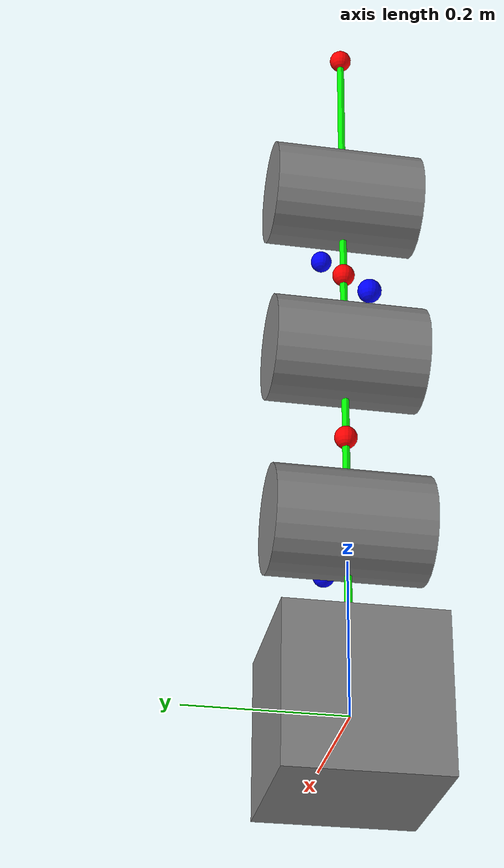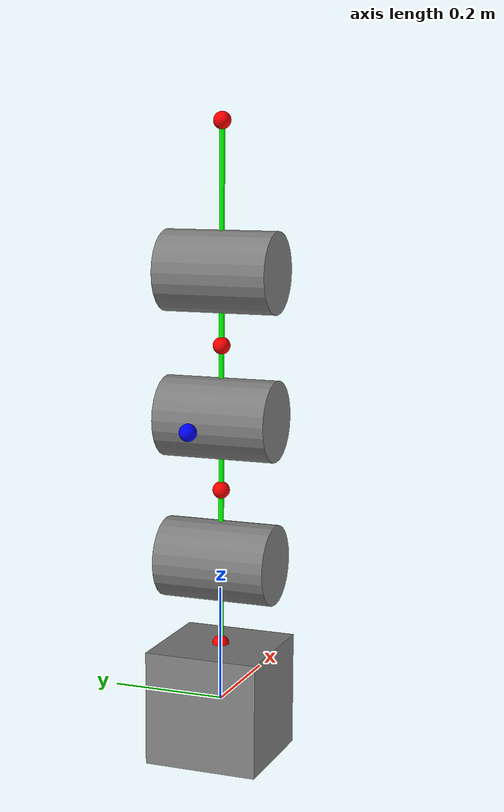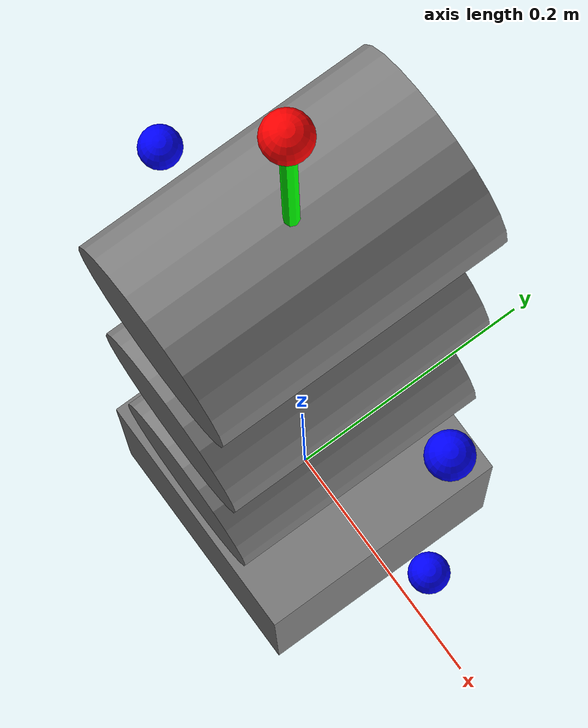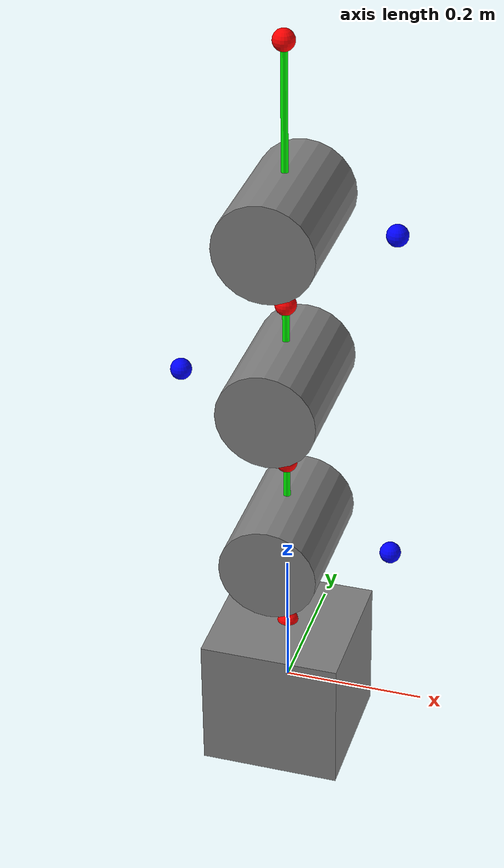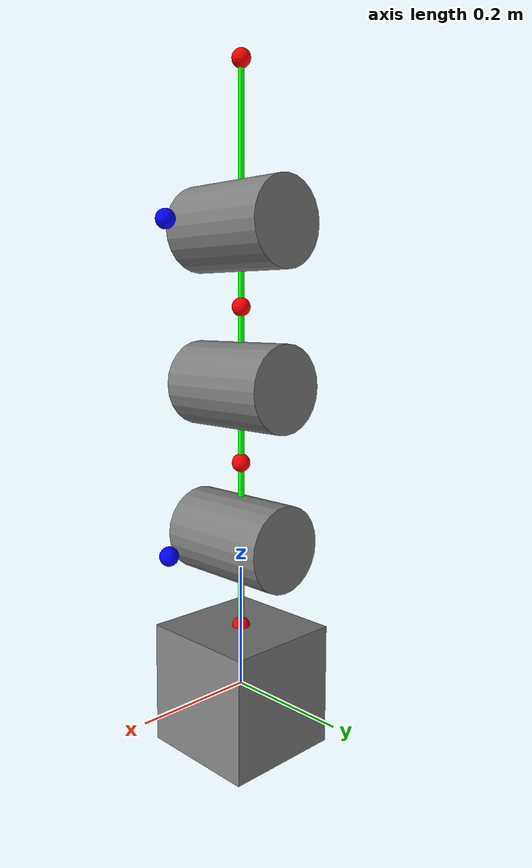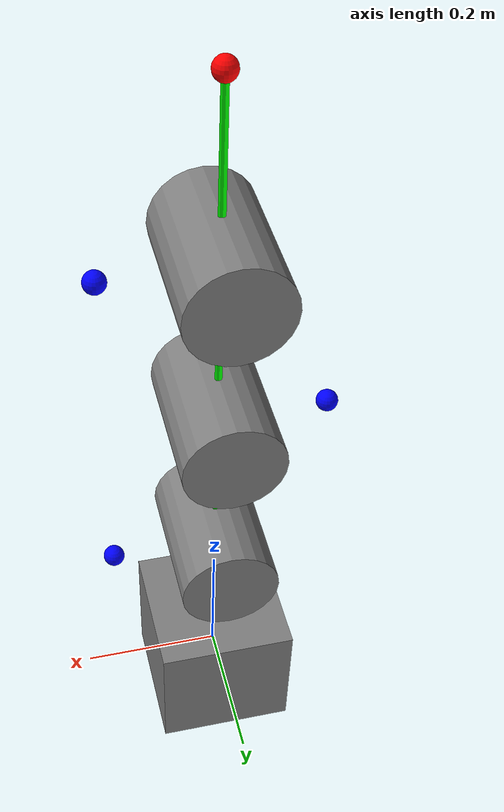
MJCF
<mujoco>
  <option>
    <flag island="enable"/>
  </option>

  <default>
    <joint type="slide" axis="1 0 0" damping="3" frictionloss=".1"/>
    <geom type="cylinder" size=".07 .1" zaxis="0 1 0"/>
    <site size=".015" rgba="1 0 0 1"/>
  </default>

  <worldbody>
    <site name="anchor" pos="0 0 1"/>

    <body pos="0 0 .75">
      <joint stiffness="10"/>
      <geom name="0"/>
    </body>
    <site name="side0" pos=".15 0 .75" rgba="0 0 1 1"/>

    <site name="01" pos="0 0 .625"/>

    <body pos="0 0 .5">
      <joint stiffness="30"/>
      <geom name="1"/>
    </body>
    <site name="side1" pos="-.15 0 .5" rgba="0 0 1 1"/>

    <site name="12" pos="0 0 .375"/>

    <body pos="0 0 .25">
      <joint stiffness="100"/>
      <geom name="2"/>
    </body>
    <site name="side2" pos=".15 0 .25" rgba="0 0 1 1"/>

    <body>
      <freejoint/>
      <site name="box" pos="0 0 .1"/>
      <geom type="box" size=".1 .1 .1"/>
    </body>
  </worldbody>

  <tendon>
    <spatial limited="true" range="0 1.05" rgba="0 1 0 1" width=".005">
      <site site="anchor"/>
      <geom geom="0" sidesite="side0"/>
      <site site="01"/>
      <geom geom="1" sidesite="side1"/>
      <site site="12"/>
      <geom geom="2" sidesite="side2"/>
      <site site="box"/>
    </spatial>
  </tendon>
</mujoco>
